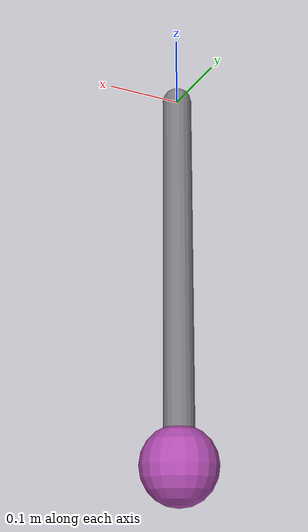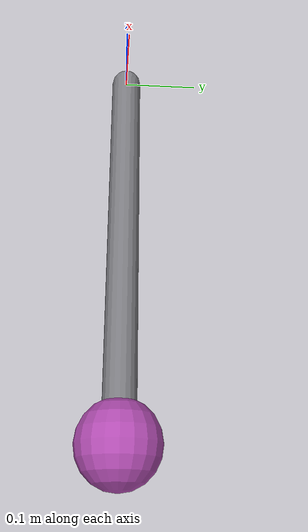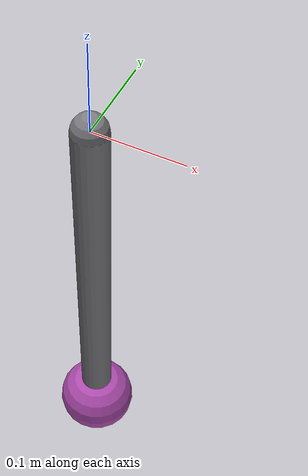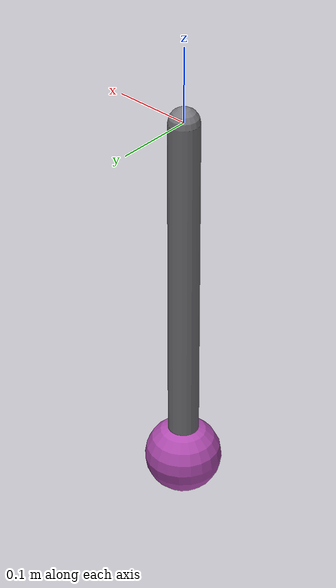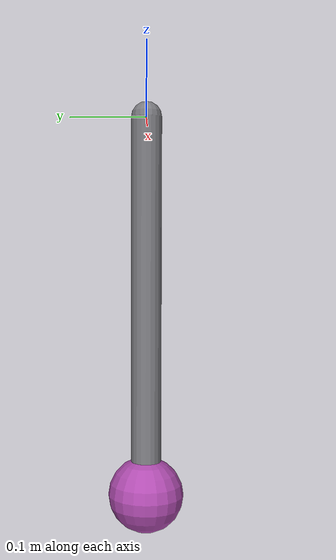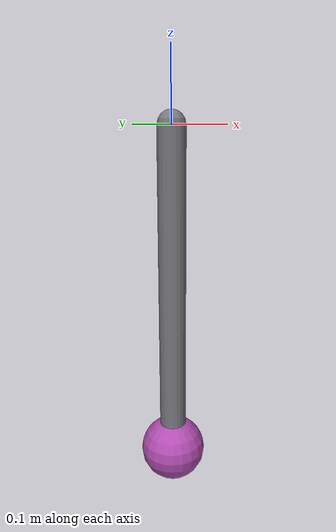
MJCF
<mujoco model="integrator">
  <compiler angle="radian" autolimits="true"/>
  <option gravity="0 0 -9.81" timestep="0.001" integrator="RK4"/>

  <default>
    <geom contype="0" conaffinity="0"/>
  </default>

  <worldbody>
    <body name="arm" pos="0 0 0">
      <joint name="hinge" type="hinge" axis="0 1 0" armature="0.01"/>
      <inertial pos="0 0 -0.25" mass="1.0" diaginertia="0.01 0.01 0.01"/>
      <geom name="rod" type="capsule" size="0.02"
            fromto="0 0 0  0 0 -0.5" rgba="0.48 0.48 0.50 1"/>
      <geom name="tip" type="sphere" size="0.05"
            pos="0 0 -0.5" rgba="0.7 0.3 0.7 1"/>
    </body>
  </worldbody>

  <actuator>
    <general name="int_actuator" joint="hinge"
             dyntype="integrator" gainprm="50"
             biastype="affine" biasprm="0 -50 -5"
             actlimited="true" actrange="-1.57 1.57"/>
  </actuator>

  <sensor>
    <actuatorfrc name="act_force" actuator="int_actuator"/>
    <jointpos name="jpos" joint="hinge"/>
  </sensor>
</mujoco>
